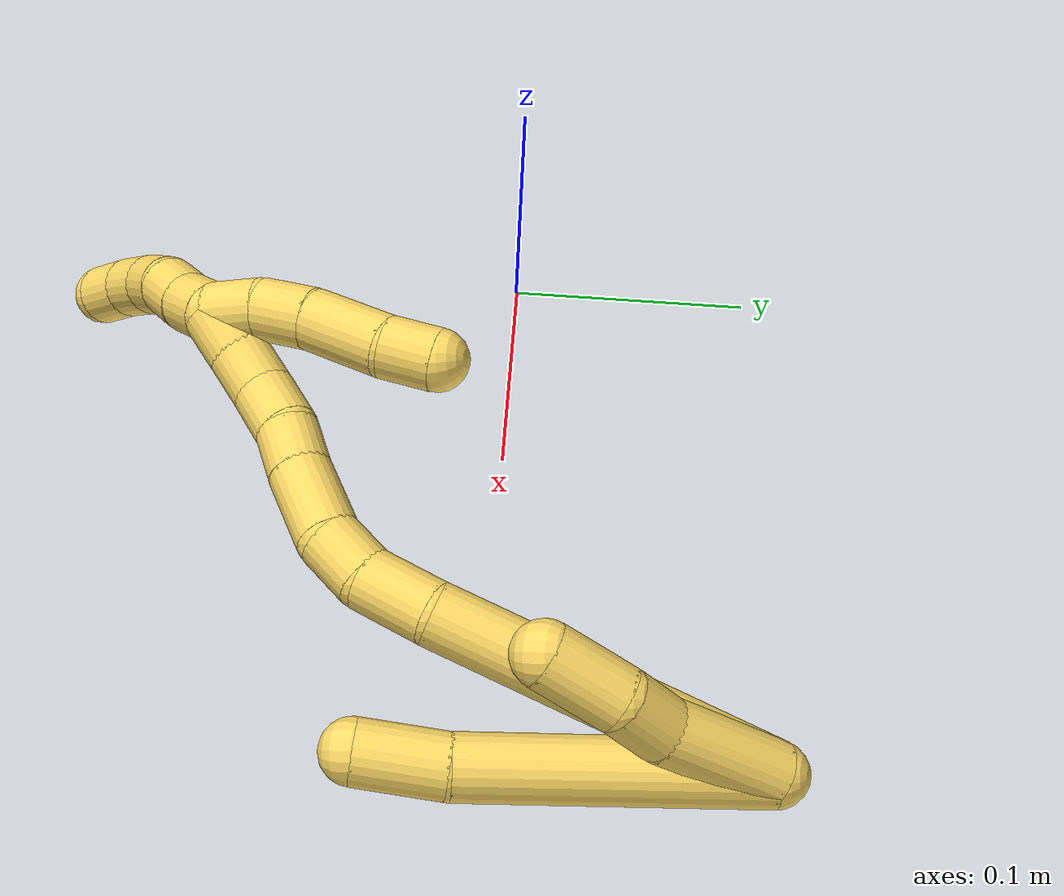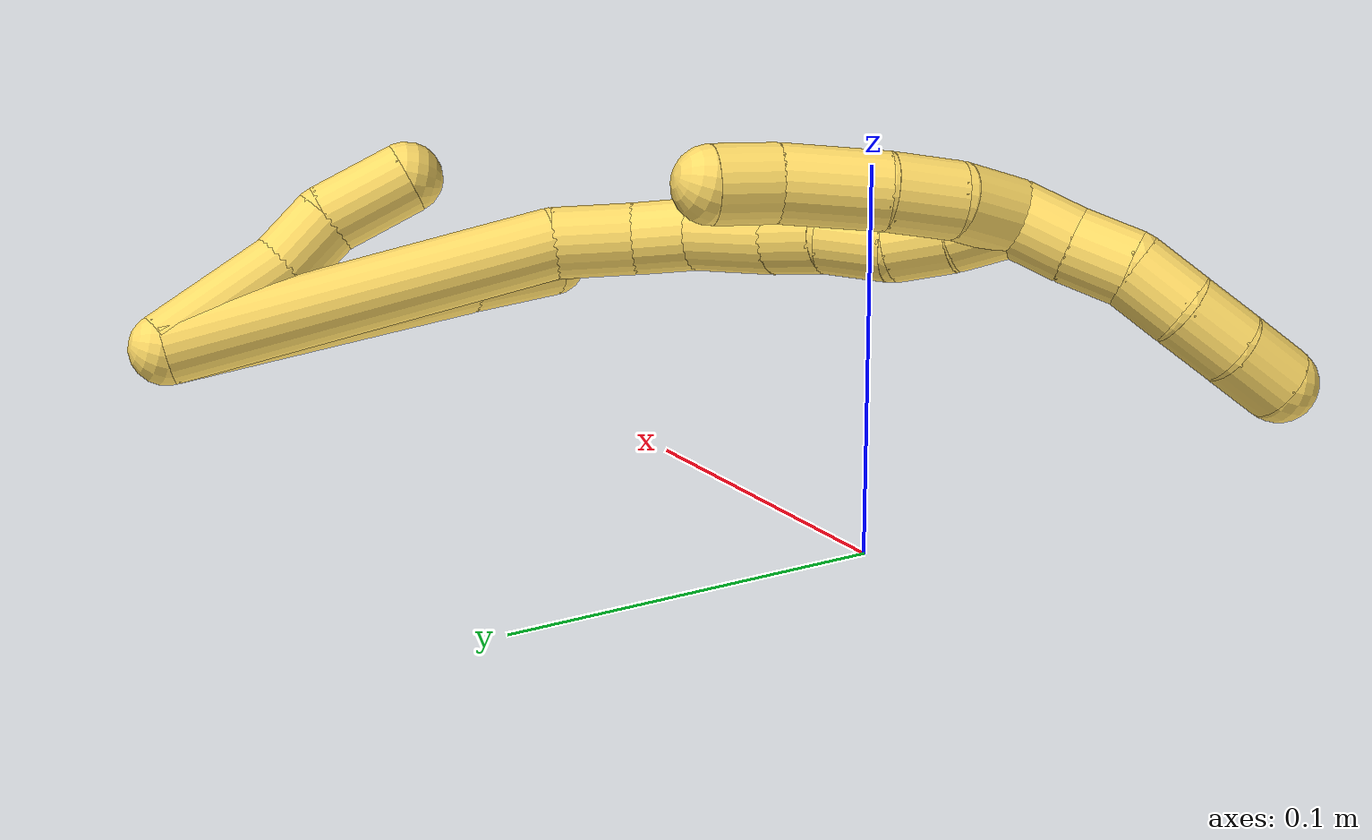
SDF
<sdf version="1.7">
 <world name="default">
  <model name="5">
   <static>0</static>
   <link name="5">
    <collision name="collision-cylinder-e_1_2_8">
     <pose>0.020348 -0.012916 -0.052548 2.90058 0.359685 1.96644</pose>
     <geometry><cylinder><radius>0.0125</radius><length>0.115622</length></cylinder></geometry>
     <surface>
      <friction><ode><mu>1.16</mu><mu2>1.16</mu2><slip1>0</slip1><slip2>0</slip2></ode></friction>
      <contact><ode><kp>1e+06</kp><kd>1</kd><max_vel>0</max_vel><min_depth>0.001</min_depth></ode></contact>
     </surface>
    </collision>
    <visual name="visual-cylinder-e_1_2_8">
     <pose>0.020348 -0.012916 -0.052548 2.90058 0.359685 1.96644</pose>
     <geometry><cylinder><radius>0.0125</radius><length>0.115622</length></cylinder></geometry>
     <material><ambient>1 0.858824 0.4 1</ambient></material>
    </visual>
    <collision name="collision-cylinder-e_2_8_6">
     <pose>0.044629 -0.030953 -0.121025 2.83049 0.230838 1.27322</pose>
     <geometry><cylinder><radius>0.0125</radius><length>0.034378</length></cylinder></geometry>
     <surface>
      <friction><ode><mu>1.16</mu><mu2>1.16</mu2><slip1>0</slip1><slip2>0</slip2></ode></friction>
      <contact><ode><kp>1e+06</kp><kd>1</kd><max_vel>0</max_vel><min_depth>0.001</min_depth></ode></contact>
     </surface>
    </collision>
    <visual name="visual-cylinder-e_2_8_6">
     <pose>0.044629 -0.030953 -0.121025 2.83049 0.230838 1.27322</pose>
     <geometry><cylinder><radius>0.0125</radius><length>0.034378</length></cylinder></geometry>
     <material><ambient>1 0.858824 0.4 1</ambient></material>
    </visual>
    <collision name="collision-cylinder-e_1_2_9">
     <pose>0.008604 -0.014611 -0.016614 2.42024 0.37087 0.923065</pose>
     <geometry><cylinder><radius>0.0125</radius><length>0.047477</length></cylinder></geometry>
     <surface>
      <friction><ode><mu>1.16</mu><mu2>1.16</mu2><slip1>0</slip1><slip2>0</slip2></ode></friction>
      <contact><ode><kp>1e+06</kp><kd>1</kd><max_vel>0</max_vel><min_depth>0.001</min_depth></ode></contact>
     </surface>
    </collision>
    <visual name="visual-cylinder-e_1_2_9">
     <pose>0.008604 -0.014611 -0.016614 2.42024 0.37087 0.923065</pose>
     <geometry><cylinder><radius>0.0125</radius><length>0.047477</length></cylinder></geometry>
     <material><ambient>1 0.858824 0.4 1</ambient></material>
    </visual>
    <collision name="collision-cylinder-e_2_9_10">
     <pose>0.021105 -0.037765 -0.038819 2.15037 0.364718 0.657462</pose>
     <geometry><cylinder><radius>0.0125</radius><length>0.021857</length></cylinder></geometry>
     <surface>
      <friction><ode><mu>1.16</mu><mu2>1.16</mu2><slip1>0</slip1><slip2>0</slip2></ode></friction>
      <contact><ode><kp>1e+06</kp><kd>1</kd><max_vel>0</max_vel><min_depth>0.001</min_depth></ode></contact>
     </surface>
    </collision>
    <visual name="visual-cylinder-e_2_9_10">
     <pose>0.021105 -0.037765 -0.038819 2.15037 0.364718 0.657462</pose>
     <geometry><cylinder><radius>0.0125</radius><length>0.021857</length></cylinder></geometry>
     <material><ambient>1 0.858824 0.4 1</ambient></material>
    </visual>
    <collision name="collision-cylinder-e_3_10_5">
     <pose>0.027179 -0.056389 -0.055756 2.41506 0.142412 0.370958</pose>
     <geometry><cylinder><radius>0.0125</radius><length>0.030665</length></cylinder></geometry>
     <surface>
      <friction><ode><mu>1.16</mu><mu2>1.16</mu2><slip1>0</slip1><slip2>0</slip2></ode></friction>
      <contact><ode><kp>1e+06</kp><kd>1</kd><max_vel>0</max_vel><min_depth>0.001</min_depth></ode></contact>
     </surface>
    </collision>
    <visual name="visual-cylinder-e_3_10_5">
     <pose>0.027179 -0.056389 -0.055756 2.41506 0.142412 0.370958</pose>
     <geometry><cylinder><radius>0.0125</radius><length>0.030665</length></cylinder></geometry>
     <material><ambient>1 0.858824 0.4 1</ambient></material>
    </visual>
    <collision name="collision-cylinder-e_1_2_11">
     <pose>0.002231 -0.033108 -0.058172 2.62418 0.033315 0.125737</pose>
     <geometry><cylinder><radius>0.0125</radius><length>0.133941</length></cylinder></geometry>
     <surface>
      <friction><ode><mu>1.16</mu><mu2>1.16</mu2><slip1>0</slip1><slip2>0</slip2></ode></friction>
      <contact><ode><kp>1e+06</kp><kd>1</kd><max_vel>0</max_vel><min_depth>0.001</min_depth></ode></contact>
     </surface>
    </collision>
    <visual name="visual-cylinder-e_1_2_11">
     <pose>0.002231 -0.033108 -0.058172 2.62418 0.033315 0.125737</pose>
     <geometry><cylinder><radius>0.0125</radius><length>0.133941</length></cylinder></geometry>
     <material><ambient>1 0.858824 0.4 1</ambient></material>
    </visual>
    <collision name="collision-cylinder-e_2_11_12">
     <pose>0.001876 -0.071778 -0.129226 2.73396 -0.182203 -0.83235</pose>
     <geometry><cylinder><radius>0.0125</radius><length>0.028537</length></cylinder></geometry>
     <surface>
      <friction><ode><mu>1.16</mu><mu2>1.16</mu2><slip1>0</slip1><slip2>0</slip2></ode></friction>
      <contact><ode><kp>1e+06</kp><kd>1</kd><max_vel>0</max_vel><min_depth>0.001</min_depth></ode></contact>
     </surface>
    </collision>
    <visual name="visual-cylinder-e_2_11_12">
     <pose>0.001876 -0.071778 -0.129226 2.73396 -0.182203 -0.83235</pose>
     <geometry><cylinder><radius>0.0125</radius><length>0.028537</length></cylinder></geometry>
     <material><ambient>1 0.858824 0.4 1</ambient></material>
    </visual>
    <collision name="collision-cylinder-e_3_12_13">
     <pose>-0.005293 -0.082997 -0.150228 2.53316 -0.433792 -1.22397</pose>
     <geometry><cylinder><radius>0.0125</radius><length>0.021811</length></cylinder></geometry>
     <surface>
      <friction><ode><mu>1.16</mu><mu2>1.16</mu2><slip1>0</slip1><slip2>0</slip2></ode></friction>
      <contact><ode><kp>1e+06</kp><kd>1</kd><max_vel>0</max_vel><min_depth>0.001</min_depth></ode></contact>
     </surface>
    </collision>
    <visual name="visual-cylinder-e_3_12_13">
     <pose>-0.005293 -0.082997 -0.150228 2.53316 -0.433792 -1.22397</pose>
     <geometry><cylinder><radius>0.0125</radius><length>0.021811</length></cylinder></geometry>
     <material><ambient>1 0.858824 0.4 1</ambient></material>
    </visual>
    <collision name="collision-cylinder-e_4_13_14">
     <pose>-0.020938 -0.096616 -0.166965 2.39562 -0.755938 -1.58541</pose>
     <geometry><cylinder><radius>0.0125</radius><length>0.032249</length></cylinder></geometry>
     <surface>
      <friction><ode><mu>1.16</mu><mu2>1.16</mu2><slip1>0</slip1><slip2>0</slip2></ode></friction>
      <contact><ode><kp>1e+06</kp><kd>1</kd><max_vel>0</max_vel><min_depth>0.001</min_depth></ode></contact>
     </surface>
    </collision>
    <visual name="visual-cylinder-e_4_13_14">
     <pose>-0.020938 -0.096616 -0.166965 2.39562 -0.755938 -1.58541</pose>
     <geometry><cylinder><radius>0.0125</radius><length>0.032249</length></cylinder></geometry>
     <material><ambient>1 0.858824 0.4 1</ambient></material>
    </visual>
    <collision name="collision-cylinder-e_5_14_15">
     <pose>-0.039031 -0.110102 -0.180074 2.25364 -0.779165 -1.42418</pose>
     <geometry><cylinder><radius>0.0125</radius><length>0.020014</length></cylinder></geometry>
     <surface>
      <friction><ode><mu>1.16</mu><mu2>1.16</mu2><slip1>0</slip1><slip2>0</slip2></ode></friction>
      <contact><ode><kp>1e+06</kp><kd>1</kd><max_vel>0</max_vel><min_depth>0.001</min_depth></ode></contact>
     </surface>
    </collision>
    <visual name="visual-cylinder-e_5_14_15">
     <pose>-0.039031 -0.110102 -0.180074 2.25364 -0.779165 -1.42418</pose>
     <geometry><cylinder><radius>0.0125</radius><length>0.020014</length></cylinder></geometry>
     <material><ambient>1 0.858824 0.4 1</ambient></material>
    </visual>
    <collision name="collision-cylinder-e_6_15_16">
     <pose>-0.053608 -0.120303 -0.191724 2.56277 -0.723044 -1.8075</pose>
     <geometry><cylinder><radius>0.0125</radius><length>0.022806</length></cylinder></geometry>
     <surface>
      <friction><ode><mu>1.16</mu><mu2>1.16</mu2><slip1>0</slip1><slip2>0</slip2></ode></friction>
      <contact><ode><kp>1e+06</kp><kd>1</kd><max_vel>0</max_vel><min_depth>0.001</min_depth></ode></contact>
     </surface>
    </collision>
    <visual name="visual-cylinder-e_6_15_16">
     <pose>-0.053608 -0.120303 -0.191724 2.56277 -0.723044 -1.8075</pose>
     <geometry><cylinder><radius>0.0125</radius><length>0.022806</length></cylinder></geometry>
     <material><ambient>1 0.858824 0.4 1</ambient></material>
    </visual>
    <collision name="collision-cylinder-e_7_16_17">
     <pose>-0.066039 -0.131325 -0.205027 2.34018 -0.505281 -1.0946</pose>
     <geometry><cylinder><radius>0.0125</radius><length>0.020189</length></cylinder></geometry>
     <surface>
      <friction><ode><mu>1.16</mu><mu2>1.16</mu2><slip1>0</slip1><slip2>0</slip2></ode></friction>
      <contact><ode><kp>1e+06</kp><kd>1</kd><max_vel>0</max_vel><min_depth>0.001</min_depth></ode></contact>
     </surface>
    </collision>
    <visual name="visual-cylinder-e_7_16_17">
     <pose>-0.066039 -0.131325 -0.205027 2.34018 -0.505281 -1.0946</pose>
     <geometry><cylinder><radius>0.0125</radius><length>0.020189</length></cylinder></geometry>
     <material><ambient>1 0.858824 0.4 1</ambient></material>
    </visual>
    <collision name="collision-cylinder-e_8_17_1">
     <pose>-0.075058 -0.144824 -0.217199 2.2709 -0.415981 -0.85194</pose>
     <geometry><cylinder><radius>0.0125</radius><length>0.020452</length></cylinder></geometry>
     <surface>
      <friction><ode><mu>1.16</mu><mu2>1.16</mu2><slip1>0</slip1><slip2>0</slip2></ode></friction>
      <contact><ode><kp>1e+06</kp><kd>1</kd><max_vel>0</max_vel><min_depth>0.001</min_depth></ode></contact>
     </surface>
    </collision>
    <visual name="visual-cylinder-e_8_17_1">
     <pose>-0.075058 -0.144824 -0.217199 2.2709 -0.415981 -0.85194</pose>
     <geometry><cylinder><radius>0.0125</radius><length>0.020452</length></cylinder></geometry>
     <material><ambient>1 0.858824 0.4 1</ambient></material>
    </visual>
    <collision name="collision-cylinder-e_1_1_18">
     <pose>-0.079381 -0.15243 -0.212206 0.041002 -0.017367 -0.000356</pose>
     <geometry><cylinder><radius>0.0125</radius><length>0.022061</length></cylinder></geometry>
     <surface>
      <friction><ode><mu>1.16</mu><mu2>1.16</mu2><slip1>0</slip1><slip2>0</slip2></ode></friction>
      <contact><ode><kp>1e+06</kp><kd>1</kd><max_vel>0</max_vel><min_depth>0.001</min_depth></ode></contact>
     </surface>
    </collision>
    <visual name="visual-cylinder-e_1_1_18">
     <pose>-0.079381 -0.15243 -0.212206 0.041002 -0.017367 -0.000356</pose>
     <geometry><cylinder><radius>0.0125</radius><length>0.022061</length></cylinder></geometry>
     <material><ambient>1 0.858824 0.4 1</ambient></material>
    </visual>
    <collision name="collision-cylinder-e_2_18_19">
     <pose>-0.07801 -0.150938 -0.19009 -0.17343 0.137824 -0.012</pose>
     <geometry><cylinder><radius>0.0125</radius><length>0.022748</length></cylinder></geometry>
     <surface>
      <friction><ode><mu>1.16</mu><mu2>1.16</mu2><slip1>0</slip1><slip2>0</slip2></ode></friction>
      <contact><ode><kp>1e+06</kp><kd>1</kd><max_vel>0</max_vel><min_depth>0.001</min_depth></ode></contact>
     </surface>
    </collision>
    <visual name="visual-cylinder-e_2_18_19">
     <pose>-0.07801 -0.150938 -0.19009 -0.17343 0.137824 -0.012</pose>
     <geometry><cylinder><radius>0.0125</radius><length>0.022748</length></cylinder></geometry>
     <material><ambient>1 0.858824 0.4 1</ambient></material>
    </visual>
    <collision name="collision-cylinder-e_3_19_20">
     <pose>-0.072563 -0.144336 -0.163036 -0.284022 0.229583 -0.032966</pose>
     <geometry><cylinder><radius>0.0125</radius><length>0.034142</length></cylinder></geometry>
     <surface>
      <friction><ode><mu>1.16</mu><mu2>1.16</mu2><slip1>0</slip1><slip2>0</slip2></ode></friction>
      <contact><ode><kp>1e+06</kp><kd>1</kd><max_vel>0</max_vel><min_depth>0.001</min_depth></ode></contact>
     </surface>
    </collision>
    <visual name="visual-cylinder-e_3_19_20">
     <pose>-0.072563 -0.144336 -0.163036 -0.284022 0.229583 -0.032966</pose>
     <geometry><cylinder><radius>0.0125</radius><length>0.034142</length></cylinder></geometry>
     <material><ambient>1 0.858824 0.4 1</ambient></material>
    </visual>
    <collision name="collision-cylinder-e_4_20_4">
     <pose>-0.06842 -0.136743 -0.136975 -0.282679 0.024489 -0.003485</pose>
     <geometry><cylinder><radius>0.0125</radius><length>0.02105</length></cylinder></geometry>
     <surface>
      <friction><ode><mu>1.16</mu><mu2>1.16</mu2><slip1>0</slip1><slip2>0</slip2></ode></friction>
      <contact><ode><kp>1e+06</kp><kd>1</kd><max_vel>0</max_vel><min_depth>0.001</min_depth></ode></contact>
     </surface>
    </collision>
    <visual name="visual-cylinder-e_4_20_4">
     <pose>-0.06842 -0.136743 -0.136975 -0.282679 0.024489 -0.003485</pose>
     <geometry><cylinder><radius>0.0125</radius><length>0.02105</length></cylinder></geometry>
     <material><ambient>1 0.858824 0.4 1</ambient></material>
    </visual>
    <collision name="collision-cylinder-e_1_1_21">
     <pose>-0.085075 -0.152194 -0.231308 3.11483 -0.629196 -3.05939</pose>
     <geometry><cylinder><radius>0.0125</radius><length>0.02</length></cylinder></geometry>
     <surface>
      <friction><ode><mu>1.16</mu><mu2>1.16</mu2><slip1>0</slip1><slip2>0</slip2></ode></friction>
      <contact><ode><kp>1e+06</kp><kd>1</kd><max_vel>0</max_vel><min_depth>0.001</min_depth></ode></contact>
     </surface>
    </collision>
    <visual name="visual-cylinder-e_1_1_21">
     <pose>-0.085075 -0.152194 -0.231308 3.11483 -0.629196 -3.05939</pose>
     <geometry><cylinder><radius>0.0125</radius><length>0.02</length></cylinder></geometry>
     <material><ambient>1 0.858824 0.4 1</ambient></material>
    </visual>
    <collision name="collision-cylinder-e_2_21_22">
     <pose>-0.097457 -0.153635 -0.246893 2.9799 -0.707162 -2.70942</pose>
     <geometry><cylinder><radius>0.0125</radius><length>0.02</length></cylinder></geometry>
     <surface>
      <friction><ode><mu>1.16</mu><mu2>1.16</mu2><slip1>0</slip1><slip2>0</slip2></ode></friction>
      <contact><ode><kp>1e+06</kp><kd>1</kd><max_vel>0</max_vel><min_depth>0.001</min_depth></ode></contact>
     </surface>
    </collision>
    <visual name="visual-cylinder-e_2_21_22">
     <pose>-0.097457 -0.153635 -0.246893 2.9799 -0.707162 -2.70942</pose>
     <geometry><cylinder><radius>0.0125</radius><length>0.02</length></cylinder></geometry>
     <material><ambient>1 0.858824 0.4 1</ambient></material>
    </visual>
    <collision name="collision-cylinder-e_3_22_23">
     <pose>-0.110302 -0.153102 -0.26192 -2.91222 -0.68779 2.5192</pose>
     <geometry><cylinder><radius>0.0125</radius><length>0.02</length></cylinder></geometry>
     <surface>
      <friction><ode><mu>1.16</mu><mu2>1.16</mu2><slip1>0</slip1><slip2>0</slip2></ode></friction>
      <contact><ode><kp>1e+06</kp><kd>1</kd><max_vel>0</max_vel><min_depth>0.001</min_depth></ode></contact>
     </surface>
    </collision>
    <visual name="visual-cylinder-e_3_22_23">
     <pose>-0.110302 -0.153102 -0.26192 -2.91222 -0.68779 2.5192</pose>
     <geometry><cylinder><radius>0.0125</radius><length>0.02</length></cylinder></geometry>
     <material><ambient>1 0.858824 0.4 1</ambient></material>
    </visual>
    <collision name="collision-cylinder-e_4_23_24">
     <pose>-0.121389 -0.149078 -0.277953 -2.88119 -0.493673 2.18309</pose>
     <geometry><cylinder><radius>0.0125</radius><length>0.02</length></cylinder></geometry>
     <surface>
      <friction><ode><mu>1.16</mu><mu2>1.16</mu2><slip1>0</slip1><slip2>0</slip2></ode></friction>
      <contact><ode><kp>1e+06</kp><kd>1</kd><max_vel>0</max_vel><min_depth>0.001</min_depth></ode></contact>
     </surface>
    </collision>
    <visual name="visual-cylinder-e_4_23_24">
     <pose>-0.121389 -0.149078 -0.277953 -2.88119 -0.493673 2.18309</pose>
     <geometry><cylinder><radius>0.0125</radius><length>0.02</length></cylinder></geometry>
     <material><ambient>1 0.858824 0.4 1</ambient></material>
    </visual>
    <collision name="collision-cylinder-e_5_24_3">
     <pose>-0.129396 -0.144084 -0.295511 -2.8489 -0.333015 1.70159</pose>
     <geometry><cylinder><radius>0.0125</radius><length>0.02</length></cylinder></geometry>
     <surface>
      <friction><ode><mu>1.16</mu><mu2>1.16</mu2><slip1>0</slip1><slip2>0</slip2></ode></friction>
      <contact><ode><kp>1e+06</kp><kd>1</kd><max_vel>0</max_vel><min_depth>0.001</min_depth></ode></contact>
     </surface>
    </collision>
    <visual name="visual-cylinder-e_5_24_3">
     <pose>-0.129396 -0.144084 -0.295511 -2.8489 -0.333015 1.70159</pose>
     <geometry><cylinder><radius>0.0125</radius><length>0.02</length></cylinder></geometry>
     <material><ambient>1 0.858824 0.4 1</ambient></material>
    </visual>
    <collision name="collision-sphere-3">
     <pose>-0.132665 -0.141357 -0.30456 0 -0 0</pose>
     <geometry><sphere><radius>0.0125</radius></sphere></geometry>
     <surface>
      <friction><ode><mu>1.16</mu><mu2>1.16</mu2><slip1>0</slip1><slip2>0</slip2></ode></friction>
      <contact><ode><kp>1e+06</kp><kd>1</kd><max_vel>0</max_vel><min_depth>0.001</min_depth></ode></contact>
     </surface>
    </collision>
    <visual name="visual-sphere-3">
     <pose>-0.132665 -0.141357 -0.30456 0 -0 0</pose>
     <geometry><sphere><radius>0.0125</radius></sphere></geometry>
     <material><ambient>1 0.858824 0.4 1</ambient></material>
    </visual>
    <collision name="collision-sphere-24">
     <pose>-0.126127 -0.14681 -0.286462 0 -0 0</pose>
     <geometry><sphere><radius>0.0125</radius></sphere></geometry>
     <surface>
      <friction><ode><mu>1.16</mu><mu2>1.16</mu2><slip1>0</slip1><slip2>0</slip2></ode></friction>
      <contact><ode><kp>1e+06</kp><kd>1</kd><max_vel>0</max_vel><min_depth>0.001</min_depth></ode></contact>
     </surface>
    </collision>
    <visual name="visual-sphere-24">
     <pose>-0.126127 -0.14681 -0.286462 0 -0 0</pose>
     <geometry><sphere><radius>0.0125</radius></sphere></geometry>
     <material><ambient>1 0.858824 0.4 1</ambient></material>
    </visual>
    <collision name="collision-sphere-23">
     <pose>-0.11665 -0.151345 -0.269444 0 -0 0</pose>
     <geometry><sphere><radius>0.0125</radius></sphere></geometry>
     <surface>
      <friction><ode><mu>1.16</mu><mu2>1.16</mu2><slip1>0</slip1><slip2>0</slip2></ode></friction>
      <contact><ode><kp>1e+06</kp><kd>1</kd><max_vel>0</max_vel><min_depth>0.001</min_depth></ode></contact>
     </surface>
    </collision>
    <visual name="visual-sphere-23">
     <pose>-0.11665 -0.151345 -0.269444 0 -0 0</pose>
     <geometry><sphere><radius>0.0125</radius></sphere></geometry>
     <material><ambient>1 0.858824 0.4 1</ambient></material>
    </visual>
    <collision name="collision-sphere-22">
     <pose>-0.103953 -0.154858 -0.254396 0 -0 0</pose>
     <geometry><sphere><radius>0.0125</radius></sphere></geometry>
     <surface>
      <friction><ode><mu>1.16</mu><mu2>1.16</mu2><slip1>0</slip1><slip2>0</slip2></ode></friction>
      <contact><ode><kp>1e+06</kp><kd>1</kd><max_vel>0</max_vel><min_depth>0.001</min_depth></ode></contact>
     </surface>
    </collision>
    <visual name="visual-sphere-22">
     <pose>-0.103953 -0.154858 -0.254396 0 -0 0</pose>
     <geometry><sphere><radius>0.0125</radius></sphere></geometry>
     <material><ambient>1 0.858824 0.4 1</ambient></material>
    </visual>
    <collision name="collision-sphere-21">
     <pose>-0.09096 -0.152411 -0.23939 0 -0 0</pose>
     <geometry><sphere><radius>0.0125</radius></sphere></geometry>
     <surface>
      <friction><ode><mu>1.16</mu><mu2>1.16</mu2><slip1>0</slip1><slip2>0</slip2></ode></friction>
      <contact><ode><kp>1e+06</kp><kd>1</kd><max_vel>0</max_vel><min_depth>0.001</min_depth></ode></contact>
     </surface>
    </collision>
    <visual name="visual-sphere-21">
     <pose>-0.09096 -0.152411 -0.23939 0 -0 0</pose>
     <geometry><sphere><radius>0.0125</radius></sphere></geometry>
     <material><ambient>1 0.858824 0.4 1</ambient></material>
    </visual>
    <collision name="collision-sphere-4">
     <pose>-0.068163 -0.133808 -0.126871 0 -0 0</pose>
     <geometry><sphere><radius>0.0125</radius></sphere></geometry>
     <surface>
      <friction><ode><mu>1.16</mu><mu2>1.16</mu2><slip1>0</slip1><slip2>0</slip2></ode></friction>
      <contact><ode><kp>1e+06</kp><kd>1</kd><max_vel>0</max_vel><min_depth>0.001</min_depth></ode></contact>
     </surface>
    </collision>
    <visual name="visual-sphere-4">
     <pose>-0.068163 -0.133808 -0.126871 0 -0 0</pose>
     <geometry><sphere><radius>0.0125</radius></sphere></geometry>
     <material><ambient>1 0.858824 0.4 1</ambient></material>
    </visual>
    <collision name="collision-sphere-20">
     <pose>-0.068678 -0.139678 -0.147079 0 -0 0</pose>
     <geometry><sphere><radius>0.0125</radius></sphere></geometry>
     <surface>
      <friction><ode><mu>1.16</mu><mu2>1.16</mu2><slip1>0</slip1><slip2>0</slip2></ode></friction>
      <contact><ode><kp>1e+06</kp><kd>1</kd><max_vel>0</max_vel><min_depth>0.001</min_depth></ode></contact>
     </surface>
    </collision>
    <visual name="visual-sphere-20">
     <pose>-0.068678 -0.139678 -0.147079 0 -0 0</pose>
     <geometry><sphere><radius>0.0125</radius></sphere></geometry>
     <material><ambient>1 0.858824 0.4 1</ambient></material>
    </visual>
    <collision name="collision-sphere-5">
     <pose>0.029356 -0.066471 -0.067101 0 -0 0</pose>
     <geometry><sphere><radius>0.0125</radius></sphere></geometry>
     <surface>
      <friction><ode><mu>1.16</mu><mu2>1.16</mu2><slip1>0</slip1><slip2>0</slip2></ode></friction>
      <contact><ode><kp>1e+06</kp><kd>1</kd><max_vel>0</max_vel><min_depth>0.001</min_depth></ode></contact>
     </surface>
    </collision>
    <visual name="visual-sphere-5">
     <pose>0.029356 -0.066471 -0.067101 0 -0 0</pose>
     <geometry><sphere><radius>0.0125</radius></sphere></geometry>
     <material><ambient>1 0.858824 0.4 1</ambient></material>
    </visual>
    <collision name="collision-sphere-10">
     <pose>0.025003 -0.046307 -0.044411 0 -0 0</pose>
     <geometry><sphere><radius>0.0125</radius></sphere></geometry>
     <surface>
      <friction><ode><mu>1.16</mu><mu2>1.16</mu2><slip1>0</slip1><slip2>0</slip2></ode></friction>
      <contact><ode><kp>1e+06</kp><kd>1</kd><max_vel>0</max_vel><min_depth>0.001</min_depth></ode></contact>
     </surface>
    </collision>
    <visual name="visual-sphere-10">
     <pose>0.025003 -0.046307 -0.044411 0 -0 0</pose>
     <geometry><sphere><radius>0.0125</radius></sphere></geometry>
     <material><ambient>1 0.858824 0.4 1</ambient></material>
    </visual>
    <collision name="collision-sphere-6">
     <pose>0.048562 -0.036075 -0.136955 0 -0 0</pose>
     <geometry><sphere><radius>0.0125</radius></sphere></geometry>
     <surface>
      <friction><ode><mu>1.16</mu><mu2>1.16</mu2><slip1>0</slip1><slip2>0</slip2></ode></friction>
      <contact><ode><kp>1e+06</kp><kd>1</kd><max_vel>0</max_vel><min_depth>0.001</min_depth></ode></contact>
     </surface>
    </collision>
    <visual name="visual-sphere-6">
     <pose>0.048562 -0.036075 -0.136955 0 -0 0</pose>
     <geometry><sphere><radius>0.0125</radius></sphere></geometry>
     <material><ambient>1 0.858824 0.4 1</ambient></material>
    </visual>
    <collision name="collision-sphere-9">
     <pose>0.017207 -0.029222 -0.033228 0 -0 0</pose>
     <geometry><sphere><radius>0.0125</radius></sphere></geometry>
     <surface>
      <friction><ode><mu>1.16</mu><mu2>1.16</mu2><slip1>0</slip1><slip2>0</slip2></ode></friction>
      <contact><ode><kp>1e+06</kp><kd>1</kd><max_vel>0</max_vel><min_depth>0.001</min_depth></ode></contact>
     </surface>
    </collision>
    <visual name="visual-sphere-9">
     <pose>0.017207 -0.029222 -0.033228 0 -0 0</pose>
     <geometry><sphere><radius>0.0125</radius></sphere></geometry>
     <material><ambient>1 0.858824 0.4 1</ambient></material>
    </visual>
    <collision name="collision-sphere-2">
     <geometry><sphere><radius>0.0125</radius></sphere></geometry>
     <surface>
      <friction><ode><mu>1.16</mu><mu2>1.16</mu2><slip1>0</slip1><slip2>0</slip2></ode></friction>
      <contact><ode><kp>1e+06</kp><kd>1</kd><max_vel>0</max_vel><min_depth>0.001</min_depth></ode></contact>
     </surface>
    </collision>
    <visual name="visual-sphere-2">
     <geometry><sphere><radius>0.0125</radius></sphere></geometry>
     <material><ambient>1 0.858824 0.4 1</ambient></material>
    </visual>
    <collision name="collision-sphere-19">
     <pose>-0.076448 -0.148994 -0.178993 0 -0 0</pose>
     <geometry><sphere><radius>0.0125</radius></sphere></geometry>
     <surface>
      <friction><ode><mu>1.16</mu><mu2>1.16</mu2><slip1>0</slip1><slip2>0</slip2></ode></friction>
      <contact><ode><kp>1e+06</kp><kd>1</kd><max_vel>0</max_vel><min_depth>0.001</min_depth></ode></contact>
     </surface>
    </collision>
    <visual name="visual-sphere-19">
     <pose>-0.076448 -0.148994 -0.178993 0 -0 0</pose>
     <geometry><sphere><radius>0.0125</radius></sphere></geometry>
     <material><ambient>1 0.858824 0.4 1</ambient></material>
    </visual>
    <collision name="collision-sphere-8">
     <pose>0.040697 -0.025831 -0.105095 0 -0 0</pose>
     <geometry><sphere><radius>0.0125</radius></sphere></geometry>
     <surface>
      <friction><ode><mu>1.16</mu><mu2>1.16</mu2><slip1>0</slip1><slip2>0</slip2></ode></friction>
      <contact><ode><kp>1e+06</kp><kd>1</kd><max_vel>0</max_vel><min_depth>0.001</min_depth></ode></contact>
     </surface>
    </collision>
    <visual name="visual-sphere-8">
     <pose>0.040697 -0.025831 -0.105095 0 -0 0</pose>
     <geometry><sphere><radius>0.0125</radius></sphere></geometry>
     <material><ambient>1 0.858824 0.4 1</ambient></material>
    </visual>
    <collision name="collision-sphere-11">
     <pose>0.004461 -0.066215 -0.116344 0 -0 0</pose>
     <geometry><sphere><radius>0.0125</radius></sphere></geometry>
     <surface>
      <friction><ode><mu>1.16</mu><mu2>1.16</mu2><slip1>0</slip1><slip2>0</slip2></ode></friction>
      <contact><ode><kp>1e+06</kp><kd>1</kd><max_vel>0</max_vel><min_depth>0.001</min_depth></ode></contact>
     </surface>
    </collision>
    <visual name="visual-sphere-11">
     <pose>0.004461 -0.066215 -0.116344 0 -0 0</pose>
     <geometry><sphere><radius>0.0125</radius></sphere></geometry>
     <material><ambient>1 0.858824 0.4 1</ambient></material>
    </visual>
    <collision name="collision-sphere-12">
     <pose>-0.000709 -0.077341 -0.142109 0 -0 0</pose>
     <geometry><sphere><radius>0.0125</radius></sphere></geometry>
     <surface>
      <friction><ode><mu>1.16</mu><mu2>1.16</mu2><slip1>0</slip1><slip2>0</slip2></ode></friction>
      <contact><ode><kp>1e+06</kp><kd>1</kd><max_vel>0</max_vel><min_depth>0.001</min_depth></ode></contact>
     </surface>
    </collision>
    <visual name="visual-sphere-12">
     <pose>-0.000709 -0.077341 -0.142109 0 -0 0</pose>
     <geometry><sphere><radius>0.0125</radius></sphere></geometry>
     <material><ambient>1 0.858824 0.4 1</ambient></material>
    </visual>
    <collision name="collision-sphere-13">
     <pose>-0.009877 -0.088653 -0.158348 0 -0 0</pose>
     <geometry><sphere><radius>0.0125</radius></sphere></geometry>
     <surface>
      <friction><ode><mu>1.16</mu><mu2>1.16</mu2><slip1>0</slip1><slip2>0</slip2></ode></friction>
      <contact><ode><kp>1e+06</kp><kd>1</kd><max_vel>0</max_vel><min_depth>0.001</min_depth></ode></contact>
     </surface>
    </collision>
    <visual name="visual-sphere-13">
     <pose>-0.009877 -0.088653 -0.158348 0 -0 0</pose>
     <geometry><sphere><radius>0.0125</radius></sphere></geometry>
     <material><ambient>1 0.858824 0.4 1</ambient></material>
    </visual>
    <collision name="collision-sphere-14">
     <pose>-0.031999 -0.104579 -0.175582 0 -0 0</pose>
     <geometry><sphere><radius>0.0125</radius></sphere></geometry>
     <surface>
      <friction><ode><mu>1.16</mu><mu2>1.16</mu2><slip1>0</slip1><slip2>0</slip2></ode></friction>
      <contact><ode><kp>1e+06</kp><kd>1</kd><max_vel>0</max_vel><min_depth>0.001</min_depth></ode></contact>
     </surface>
    </collision>
    <visual name="visual-sphere-14">
     <pose>-0.031999 -0.104579 -0.175582 0 -0 0</pose>
     <geometry><sphere><radius>0.0125</radius></sphere></geometry>
     <material><ambient>1 0.858824 0.4 1</ambient></material>
    </visual>
    <collision name="collision-sphere-15">
     <pose>-0.046063 -0.115626 -0.184567 0 -0 0</pose>
     <geometry><sphere><radius>0.0125</radius></sphere></geometry>
     <surface>
      <friction><ode><mu>1.16</mu><mu2>1.16</mu2><slip1>0</slip1><slip2>0</slip2></ode></friction>
      <contact><ode><kp>1e+06</kp><kd>1</kd><max_vel>0</max_vel><min_depth>0.001</min_depth></ode></contact>
     </surface>
    </collision>
    <visual name="visual-sphere-15">
     <pose>-0.046063 -0.115626 -0.184567 0 -0 0</pose>
     <geometry><sphere><radius>0.0125</radius></sphere></geometry>
     <material><ambient>1 0.858824 0.4 1</ambient></material>
    </visual>
    <collision name="collision-sphere-16">
     <pose>-0.061153 -0.12498 -0.198882 0 -0 0</pose>
     <geometry><sphere><radius>0.0125</radius></sphere></geometry>
     <surface>
      <friction><ode><mu>1.16</mu><mu2>1.16</mu2><slip1>0</slip1><slip2>0</slip2></ode></friction>
      <contact><ode><kp>1e+06</kp><kd>1</kd><max_vel>0</max_vel><min_depth>0.001</min_depth></ode></contact>
     </surface>
    </collision>
    <visual name="visual-sphere-16">
     <pose>-0.061153 -0.12498 -0.198882 0 -0 0</pose>
     <geometry><sphere><radius>0.0125</radius></sphere></geometry>
     <material><ambient>1 0.858824 0.4 1</ambient></material>
    </visual>
    <collision name="collision-sphere-17">
     <pose>-0.070925 -0.137671 -0.211172 0 -0 0</pose>
     <geometry><sphere><radius>0.0125</radius></sphere></geometry>
     <surface>
      <friction><ode><mu>1.16</mu><mu2>1.16</mu2><slip1>0</slip1><slip2>0</slip2></ode></friction>
      <contact><ode><kp>1e+06</kp><kd>1</kd><max_vel>0</max_vel><min_depth>0.001</min_depth></ode></contact>
     </surface>
    </collision>
    <visual name="visual-sphere-17">
     <pose>-0.070925 -0.137671 -0.211172 0 -0 0</pose>
     <geometry><sphere><radius>0.0125</radius></sphere></geometry>
     <material><ambient>1 0.858824 0.4 1</ambient></material>
    </visual>
    <collision name="collision-sphere-1">
     <pose>-0.07919 -0.151978 -0.223226 0 -0 0</pose>
     <geometry><sphere><radius>0.0125</radius></sphere></geometry>
     <surface>
      <friction><ode><mu>1.16</mu><mu2>1.16</mu2><slip1>0</slip1><slip2>0</slip2></ode></friction>
      <contact><ode><kp>1e+06</kp><kd>1</kd><max_vel>0</max_vel><min_depth>0.001</min_depth></ode></contact>
     </surface>
    </collision>
    <visual name="visual-sphere-1">
     <pose>-0.07919 -0.151978 -0.223226 0 -0 0</pose>
     <geometry><sphere><radius>0.0125</radius></sphere></geometry>
     <material><ambient>1 0.858824 0.4 1</ambient></material>
    </visual>
    <collision name="collision-sphere-18">
     <pose>-0.079573 -0.152882 -0.201187 0 -0 0</pose>
     <geometry><sphere><radius>0.0125</radius></sphere></geometry>
     <surface>
      <friction><ode><mu>1.16</mu><mu2>1.16</mu2><slip1>0</slip1><slip2>0</slip2></ode></friction>
      <contact><ode><kp>1e+06</kp><kd>1</kd><max_vel>0</max_vel><min_depth>0.001</min_depth></ode></contact>
     </surface>
    </collision>
    <visual name="visual-sphere-18">
     <pose>-0.079573 -0.152882 -0.201187 0 -0 0</pose>
     <geometry><sphere><radius>0.0125</radius></sphere></geometry>
     <material><ambient>1 0.858824 0.4 1</ambient></material>
    </visual>
    <inertial>
     <pose>-0.024048 -0.076559 -0.125345 0 -0 0</pose>
     <mass>0.75</mass>
     <inertia><ixx>0.000321</ixx><ixy>0</ixy><ixz>0</ixz><iyy>2.2e-05</iyy><iyz>0</iyz><izz>6.6e-05</izz></inertia>
    </inertial>
   </link>
   <pose>0.248366 0.106741 0.012606 -1.27177 -0.338046 -0.251132</pose>
  </model>
 </world>
</sdf>
